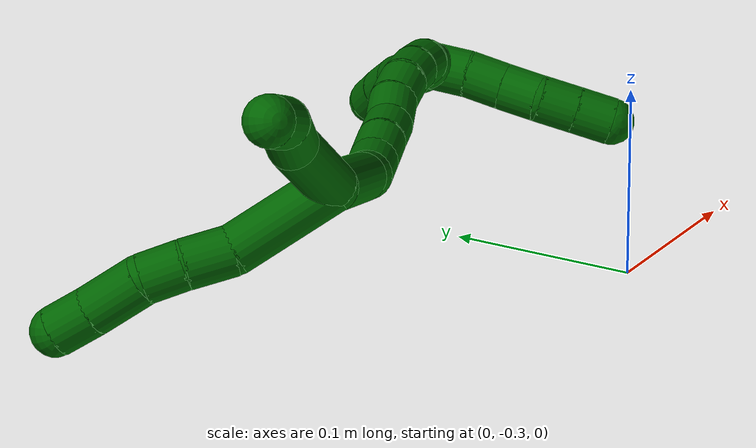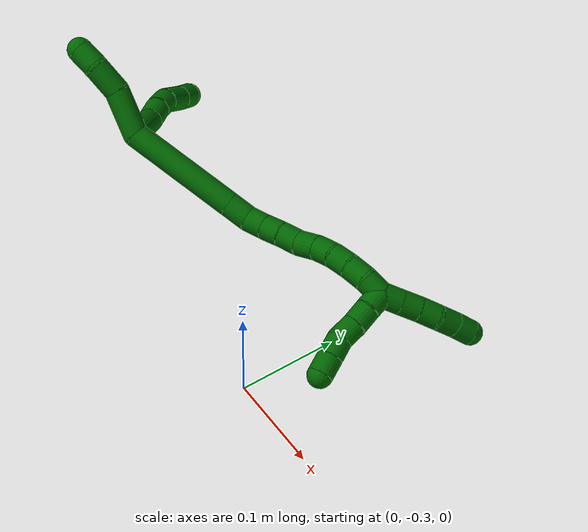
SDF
<sdf version="1.7">
 <world name="default">
  <model name="6">
   <static>0</static>
   <link name="6">
    <collision name="collision-cylinder-e_1_2_8">
     <pose>-0.023051 -0.011355 -0.009901 2.28793 -0.991919 -1.74363</pose>
     <geometry><cylinder><radius>0.0125</radius><length>0.055075</length></cylinder></geometry>
     <surface>
      <friction><ode><mu>1.16</mu><mu2>1.16</mu2><slip1>0</slip1><slip2>0</slip2></ode></friction>
      <contact><ode><kp>1e+06</kp><kd>1</kd><max_vel>0</max_vel><min_depth>0.001</min_depth></ode></contact>
     </surface>
    </collision>
    <visual name="visual-cylinder-e_1_2_8">
     <pose>-0.023051 -0.011355 -0.009901 2.28793 -0.991919 -1.74363</pose>
     <geometry><cylinder><radius>0.0125</radius><length>0.055075</length></cylinder></geometry>
     <material><ambient>0 0.392157 0.003922 1</ambient></material>
    </visual>
    <collision name="collision-cylinder-e_2_8_9">
     <pose>-0.057213 -0.024337 -0.023849 2.75915 -1.19672 -2.58823</pose>
     <geometry><cylinder><radius>0.0125</radius><length>0.023872</length></cylinder></geometry>
     <surface>
      <friction><ode><mu>1.16</mu><mu2>1.16</mu2><slip1>0</slip1><slip2>0</slip2></ode></friction>
      <contact><ode><kp>1e+06</kp><kd>1</kd><max_vel>0</max_vel><min_depth>0.001</min_depth></ode></contact>
     </surface>
    </collision>
    <visual name="visual-cylinder-e_2_8_9">
     <pose>-0.057213 -0.024337 -0.023849 2.75915 -1.19672 -2.58823</pose>
     <geometry><cylinder><radius>0.0125</radius><length>0.023872</length></cylinder></geometry>
     <material><ambient>0 0.392157 0.003922 1</ambient></material>
    </visual>
    <collision name="collision-cylinder-e_3_9_10">
     <pose>-0.077357 -0.027998 -0.032349 2.71324 -1.07417 -2.44116</pose>
     <geometry><cylinder><radius>0.0125</radius><length>0.020551</length></cylinder></geometry>
     <surface>
      <friction><ode><mu>1.16</mu><mu2>1.16</mu2><slip1>0</slip1><slip2>0</slip2></ode></friction>
      <contact><ode><kp>1e+06</kp><kd>1</kd><max_vel>0</max_vel><min_depth>0.001</min_depth></ode></contact>
     </surface>
    </collision>
    <visual name="visual-cylinder-e_3_9_10">
     <pose>-0.077357 -0.027998 -0.032349 2.71324 -1.07417 -2.44116</pose>
     <geometry><cylinder><radius>0.0125</radius><length>0.020551</length></cylinder></geometry>
     <material><ambient>0 0.392157 0.003922 1</ambient></material>
    </visual>
    <collision name="collision-cylinder-e_4_10_11">
     <pose>-0.096519 -0.035999 -0.045803 2.55611 -0.753378 -1.83942</pose>
     <geometry><cylinder><radius>0.0125</radius><length>0.02961</length></cylinder></geometry>
     <surface>
      <friction><ode><mu>1.16</mu><mu2>1.16</mu2><slip1>0</slip1><slip2>0</slip2></ode></friction>
      <contact><ode><kp>1e+06</kp><kd>1</kd><max_vel>0</max_vel><min_depth>0.001</min_depth></ode></contact>
     </surface>
    </collision>
    <visual name="visual-cylinder-e_4_10_11">
     <pose>-0.096519 -0.035999 -0.045803 2.55611 -0.753378 -1.83942</pose>
     <geometry><cylinder><radius>0.0125</radius><length>0.02961</length></cylinder></geometry>
     <material><ambient>0 0.392157 0.003922 1</ambient></material>
    </visual>
    <collision name="collision-cylinder-e_5_11_6">
     <pose>-0.114209 -0.045781 -0.060918 2.58396 -0.809356 -1.96323</pose>
     <geometry><cylinder><radius>0.0125</radius><length>0.020892</length></cylinder></geometry>
     <surface>
      <friction><ode><mu>1.16</mu><mu2>1.16</mu2><slip1>0</slip1><slip2>0</slip2></ode></friction>
      <contact><ode><kp>1e+06</kp><kd>1</kd><max_vel>0</max_vel><min_depth>0.001</min_depth></ode></contact>
     </surface>
    </collision>
    <visual name="visual-cylinder-e_5_11_6">
     <pose>-0.114209 -0.045781 -0.060918 2.58396 -0.809356 -1.96323</pose>
     <geometry><cylinder><radius>0.0125</radius><length>0.020892</length></cylinder></geometry>
     <material><ambient>0 0.392157 0.003922 1</ambient></material>
    </visual>
    <collision name="collision-cylinder-e_1_2_12">
     <pose>-0.014214 0.012158 0.013254 -0.74227 -0.668801 0.268803</pose>
     <geometry><cylinder><radius>0.0125</radius><length>0.045849</length></cylinder></geometry>
     <surface>
      <friction><ode><mu>1.16</mu><mu2>1.16</mu2><slip1>0</slip1><slip2>0</slip2></ode></friction>
      <contact><ode><kp>1e+06</kp><kd>1</kd><max_vel>0</max_vel><min_depth>0.001</min_depth></ode></contact>
     </surface>
    </collision>
    <visual name="visual-cylinder-e_1_2_12">
     <pose>-0.014214 0.012158 0.013254 -0.74227 -0.668801 0.268803</pose>
     <geometry><cylinder><radius>0.0125</radius><length>0.045849</length></cylinder></geometry>
     <material><ambient>0 0.392157 0.003922 1</ambient></material>
    </visual>
    <collision name="collision-cylinder-e_2_12_13">
     <pose>-0.035436 0.03057 0.039308 -0.454536 -0.457164 0.107502</pose>
     <geometry><cylinder><radius>0.0125</radius><length>0.031753</length></cylinder></geometry>
     <surface>
      <friction><ode><mu>1.16</mu><mu2>1.16</mu2><slip1>0</slip1><slip2>0</slip2></ode></friction>
      <contact><ode><kp>1e+06</kp><kd>1</kd><max_vel>0</max_vel><min_depth>0.001</min_depth></ode></contact>
     </surface>
    </collision>
    <visual name="visual-cylinder-e_2_12_13">
     <pose>-0.035436 0.03057 0.039308 -0.454536 -0.457164 0.107502</pose>
     <geometry><cylinder><radius>0.0125</radius><length>0.031753</length></cylinder></geometry>
     <material><ambient>0 0.392157 0.003922 1</ambient></material>
    </visual>
    <collision name="collision-cylinder-e_3_13_5">
     <pose>-0.049543 0.038324 0.060639 -0.173954 -0.686548 0.062313</pose>
     <geometry><cylinder><radius>0.0125</radius><length>0.022398</length></cylinder></geometry>
     <surface>
      <friction><ode><mu>1.16</mu><mu2>1.16</mu2><slip1>0</slip1><slip2>0</slip2></ode></friction>
      <contact><ode><kp>1e+06</kp><kd>1</kd><max_vel>0</max_vel><min_depth>0.001</min_depth></ode></contact>
     </surface>
    </collision>
    <visual name="visual-cylinder-e_3_13_5">
     <pose>-0.049543 0.038324 0.060639 -0.173954 -0.686548 0.062313</pose>
     <geometry><cylinder><radius>0.0125</radius><length>0.022398</length></cylinder></geometry>
     <material><ambient>0 0.392157 0.003922 1</ambient></material>
    </visual>
    <collision name="collision-cylinder-e_1_2_14">
     <pose>0.029814 -0.002997 -0.048864 3.08033 0.547007 2.924</pose>
     <geometry><cylinder><radius>0.0125</radius><length>0.114639</length></cylinder></geometry>
     <surface>
      <friction><ode><mu>1.16</mu><mu2>1.16</mu2><slip1>0</slip1><slip2>0</slip2></ode></friction>
      <contact><ode><kp>1e+06</kp><kd>1</kd><max_vel>0</max_vel><min_depth>0.001</min_depth></ode></contact>
     </surface>
    </collision>
    <visual name="visual-cylinder-e_1_2_14">
     <pose>0.029814 -0.002997 -0.048864 3.08033 0.547007 2.924</pose>
     <geometry><cylinder><radius>0.0125</radius><length>0.114639</length></cylinder></geometry>
     <material><ambient>0 0.392157 0.003922 1</ambient></material>
    </visual>
    <collision name="collision-cylinder-e_2_14_15">
     <pose>0.065845 -0.006506 -0.10766 3.09017 0.55871 2.96276</pose>
     <geometry><cylinder><radius>0.0125</radius><length>0.023459</length></cylinder></geometry>
     <surface>
      <friction><ode><mu>1.16</mu><mu2>1.16</mu2><slip1>0</slip1><slip2>0</slip2></ode></friction>
      <contact><ode><kp>1e+06</kp><kd>1</kd><max_vel>0</max_vel><min_depth>0.001</min_depth></ode></contact>
     </surface>
    </collision>
    <visual name="visual-cylinder-e_2_14_15">
     <pose>0.065845 -0.006506 -0.10766 3.09017 0.55871 2.96276</pose>
     <geometry><cylinder><radius>0.0125</radius><length>0.023459</length></cylinder></geometry>
     <material><ambient>0 0.392157 0.003922 1</ambient></material>
    </visual>
    <collision name="collision-cylinder-e_3_15_16">
     <pose>0.077853 -0.004225 -0.125365 -2.79661 0.611485 -2.13289</pose>
     <geometry><cylinder><radius>0.0125</radius><length>0.020172</length></cylinder></geometry>
     <surface>
      <friction><ode><mu>1.16</mu><mu2>1.16</mu2><slip1>0</slip1><slip2>0</slip2></ode></friction>
      <contact><ode><kp>1e+06</kp><kd>1</kd><max_vel>0</max_vel><min_depth>0.001</min_depth></ode></contact>
     </surface>
    </collision>
    <visual name="visual-cylinder-e_3_15_16">
     <pose>0.077853 -0.004225 -0.125365 -2.79661 0.611485 -2.13289</pose>
     <geometry><cylinder><radius>0.0125</radius><length>0.020172</length></cylinder></geometry>
     <material><ambient>0 0.392157 0.003922 1</ambient></material>
    </visual>
    <collision name="collision-cylinder-e_4_16_17">
     <pose>0.089783 0.002525 -0.14018 -2.62976 0.649891 -1.82087</pose>
     <geometry><cylinder><radius>0.0125</radius><length>0.020292</length></cylinder></geometry>
     <surface>
      <friction><ode><mu>1.16</mu><mu2>1.16</mu2><slip1>0</slip1><slip2>0</slip2></ode></friction>
      <contact><ode><kp>1e+06</kp><kd>1</kd><max_vel>0</max_vel><min_depth>0.001</min_depth></ode></contact>
     </surface>
    </collision>
    <visual name="visual-cylinder-e_4_16_17">
     <pose>0.089783 0.002525 -0.14018 -2.62976 0.649891 -1.82087</pose>
     <geometry><cylinder><radius>0.0125</radius><length>0.020292</length></cylinder></geometry>
     <material><ambient>0 0.392157 0.003922 1</ambient></material>
    </visual>
    <collision name="collision-cylinder-e_5_17_18">
     <pose>0.101934 0.009549 -0.154684 -2.75151 0.640364 -2.06699</pose>
     <geometry><cylinder><radius>0.0125</radius><length>0.020122</length></cylinder></geometry>
     <surface>
      <friction><ode><mu>1.16</mu><mu2>1.16</mu2><slip1>0</slip1><slip2>0</slip2></ode></friction>
      <contact><ode><kp>1e+06</kp><kd>1</kd><max_vel>0</max_vel><min_depth>0.001</min_depth></ode></contact>
     </surface>
    </collision>
    <visual name="visual-cylinder-e_5_17_18">
     <pose>0.101934 0.009549 -0.154684 -2.75151 0.640364 -2.06699</pose>
     <geometry><cylinder><radius>0.0125</radius><length>0.020122</length></cylinder></geometry>
     <material><ambient>0 0.392157 0.003922 1</ambient></material>
    </visual>
    <collision name="collision-cylinder-e_6_18_19">
     <pose>0.113515 0.017945 -0.169444 -2.51099 0.552372 -1.43077</pose>
     <geometry><cylinder><radius>0.0125</radius><length>0.021229</length></cylinder></geometry>
     <surface>
      <friction><ode><mu>1.16</mu><mu2>1.16</mu2><slip1>0</slip1><slip2>0</slip2></ode></friction>
      <contact><ode><kp>1e+06</kp><kd>1</kd><max_vel>0</max_vel><min_depth>0.001</min_depth></ode></contact>
     </surface>
    </collision>
    <visual name="visual-cylinder-e_6_18_19">
     <pose>0.113515 0.017945 -0.169444 -2.51099 0.552372 -1.43077</pose>
     <geometry><cylinder><radius>0.0125</radius><length>0.021229</length></cylinder></geometry>
     <material><ambient>0 0.392157 0.003922 1</ambient></material>
    </visual>
    <collision name="collision-cylinder-e_7_19_20">
     <pose>0.125659 0.02744 -0.183077 -2.55981 0.714328 -1.78933</pose>
     <geometry><cylinder><radius>0.0125</radius><length>0.020073</length></cylinder></geometry>
     <surface>
      <friction><ode><mu>1.16</mu><mu2>1.16</mu2><slip1>0</slip1><slip2>0</slip2></ode></friction>
      <contact><ode><kp>1e+06</kp><kd>1</kd><max_vel>0</max_vel><min_depth>0.001</min_depth></ode></contact>
     </surface>
    </collision>
    <visual name="visual-cylinder-e_7_19_20">
     <pose>0.125659 0.02744 -0.183077 -2.55981 0.714328 -1.78933</pose>
     <geometry><cylinder><radius>0.0125</radius><length>0.020073</length></cylinder></geometry>
     <material><ambient>0 0.392157 0.003922 1</ambient></material>
    </visual>
    <collision name="collision-cylinder-e_8_20_21">
     <pose>0.139011 0.033874 -0.196413 -2.82827 0.744249 -2.37249</pose>
     <geometry><cylinder><radius>0.0125</radius><length>0.020006</length></cylinder></geometry>
     <surface>
      <friction><ode><mu>1.16</mu><mu2>1.16</mu2><slip1>0</slip1><slip2>0</slip2></ode></friction>
      <contact><ode><kp>1e+06</kp><kd>1</kd><max_vel>0</max_vel><min_depth>0.001</min_depth></ode></contact>
     </surface>
    </collision>
    <visual name="visual-cylinder-e_8_20_21">
     <pose>0.139011 0.033874 -0.196413 -2.82827 0.744249 -2.37249</pose>
     <geometry><cylinder><radius>0.0125</radius><length>0.020006</length></cylinder></geometry>
     <material><ambient>0 0.392157 0.003922 1</ambient></material>
    </visual>
    <collision name="collision-cylinder-e_9_21_22">
     <pose>0.152482 0.03703 -0.210791 -3.02181 0.733282 -2.8318</pose>
     <geometry><cylinder><radius>0.0125</radius><length>0.020005</length></cylinder></geometry>
     <surface>
      <friction><ode><mu>1.16</mu><mu2>1.16</mu2><slip1>0</slip1><slip2>0</slip2></ode></friction>
      <contact><ode><kp>1e+06</kp><kd>1</kd><max_vel>0</max_vel><min_depth>0.001</min_depth></ode></contact>
     </surface>
    </collision>
    <visual name="visual-cylinder-e_9_21_22">
     <pose>0.152482 0.03703 -0.210791 -3.02181 0.733282 -2.8318</pose>
     <geometry><cylinder><radius>0.0125</radius><length>0.020005</length></cylinder></geometry>
     <material><ambient>0 0.392157 0.003922 1</ambient></material>
    </visual>
    <collision name="collision-cylinder-e_10_22_1">
     <pose>0.165054 0.036185 -0.226074 2.92567 0.628164 2.4975</pose>
     <geometry><cylinder><radius>0.0125</radius><length>0.020002</length></cylinder></geometry>
     <surface>
      <friction><ode><mu>1.16</mu><mu2>1.16</mu2><slip1>0</slip1><slip2>0</slip2></ode></friction>
      <contact><ode><kp>1e+06</kp><kd>1</kd><max_vel>0</max_vel><min_depth>0.001</min_depth></ode></contact>
     </surface>
    </collision>
    <visual name="visual-cylinder-e_10_22_1">
     <pose>0.165054 0.036185 -0.226074 2.92567 0.628164 2.4975</pose>
     <geometry><cylinder><radius>0.0125</radius><length>0.020002</length></cylinder></geometry>
     <material><ambient>0 0.392157 0.003922 1</ambient></material>
    </visual>
    <collision name="collision-cylinder-e_1_1_23">
     <pose>0.172 0.033238 -0.243846 3.01923 0.107151 1.43816</pose>
     <geometry><cylinder><radius>0.0125</radius><length>0.02</length></cylinder></geometry>
     <surface>
      <friction><ode><mu>1.16</mu><mu2>1.16</mu2><slip1>0</slip1><slip2>0</slip2></ode></friction>
      <contact><ode><kp>1e+06</kp><kd>1</kd><max_vel>0</max_vel><min_depth>0.001</min_depth></ode></contact>
     </surface>
    </collision>
    <visual name="visual-cylinder-e_1_1_23">
     <pose>0.172 0.033238 -0.243846 3.01923 0.107151 1.43816</pose>
     <geometry><cylinder><radius>0.0125</radius><length>0.02</length></cylinder></geometry>
     <material><ambient>0 0.392157 0.003922 1</ambient></material>
    </visual>
    <collision name="collision-cylinder-e_2_23_24">
     <pose>0.17405 0.030883 -0.2636 3.02674 0.098226 1.41473</pose>
     <geometry><cylinder><radius>0.0125</radius><length>0.02</length></cylinder></geometry>
     <surface>
      <friction><ode><mu>1.16</mu><mu2>1.16</mu2><slip1>0</slip1><slip2>0</slip2></ode></friction>
      <contact><ode><kp>1e+06</kp><kd>1</kd><max_vel>0</max_vel><min_depth>0.001</min_depth></ode></contact>
     </surface>
    </collision>
    <visual name="visual-cylinder-e_2_23_24">
     <pose>0.17405 0.030883 -0.2636 3.02674 0.098226 1.41473</pose>
     <geometry><cylinder><radius>0.0125</radius><length>0.02</length></cylinder></geometry>
     <material><ambient>0 0.392157 0.003922 1</ambient></material>
    </visual>
    <collision name="collision-cylinder-e_3_24_25">
     <pose>0.176639 0.028602 -0.28329 3.02575 0.161539 1.89832</pose>
     <geometry><cylinder><radius>0.0125</radius><length>0.02</length></cylinder></geometry>
     <surface>
      <friction><ode><mu>1.16</mu><mu2>1.16</mu2><slip1>0</slip1><slip2>0</slip2></ode></friction>
      <contact><ode><kp>1e+06</kp><kd>1</kd><max_vel>0</max_vel><min_depth>0.001</min_depth></ode></contact>
     </surface>
    </collision>
    <visual name="visual-cylinder-e_3_24_25">
     <pose>0.176639 0.028602 -0.28329 3.02575 0.161539 1.89832</pose>
     <geometry><cylinder><radius>0.0125</radius><length>0.02</length></cylinder></geometry>
     <material><ambient>0 0.392157 0.003922 1</ambient></material>
    </visual>
    <collision name="collision-cylinder-e_4_25_26">
     <pose>0.178003 0.024548 -0.302657 2.84589 -0.024466 -0.163905</pose>
     <geometry><cylinder><radius>0.0125</radius><length>0.02</length></cylinder></geometry>
     <surface>
      <friction><ode><mu>1.16</mu><mu2>1.16</mu2><slip1>0</slip1><slip2>0</slip2></ode></friction>
      <contact><ode><kp>1e+06</kp><kd>1</kd><max_vel>0</max_vel><min_depth>0.001</min_depth></ode></contact>
     </surface>
    </collision>
    <visual name="visual-cylinder-e_4_25_26">
     <pose>0.178003 0.024548 -0.302657 2.84589 -0.024466 -0.163905</pose>
     <geometry><cylinder><radius>0.0125</radius><length>0.02</length></cylinder></geometry>
     <material><ambient>0 0.392157 0.003922 1</ambient></material>
    </visual>
    <collision name="collision-cylinder-e_5_26_4">
     <pose>0.177852 0.018429 -0.321692 2.81519 0.009311 0.056532</pose>
     <geometry><cylinder><radius>0.0125</radius><length>0.02</length></cylinder></geometry>
     <surface>
      <friction><ode><mu>1.16</mu><mu2>1.16</mu2><slip1>0</slip1><slip2>0</slip2></ode></friction>
      <contact><ode><kp>1e+06</kp><kd>1</kd><max_vel>0</max_vel><min_depth>0.001</min_depth></ode></contact>
     </surface>
    </collision>
    <visual name="visual-cylinder-e_5_26_4">
     <pose>0.177852 0.018429 -0.321692 2.81519 0.009311 0.056532</pose>
     <geometry><cylinder><radius>0.0125</radius><length>0.02</length></cylinder></geometry>
     <material><ambient>0 0.392157 0.003922 1</ambient></material>
    </visual>
    <collision name="collision-cylinder-e_1_1_27">
     <pose>0.178521 0.030965 -0.228478 0.564922 0.861781 0.265262</pose>
     <geometry><cylinder><radius>0.0125</radius><length>0.02</length></cylinder></geometry>
     <surface>
      <friction><ode><mu>1.16</mu><mu2>1.16</mu2><slip1>0</slip1><slip2>0</slip2></ode></friction>
      <contact><ode><kp>1e+06</kp><kd>1</kd><max_vel>0</max_vel><min_depth>0.001</min_depth></ode></contact>
     </surface>
    </collision>
    <visual name="visual-cylinder-e_1_1_27">
     <pose>0.178521 0.030965 -0.228478 0.564922 0.861781 0.265262</pose>
     <geometry><cylinder><radius>0.0125</radius><length>0.02</length></cylinder></geometry>
     <material><ambient>0 0.392157 0.003922 1</ambient></material>
    </visual>
    <collision name="collision-cylinder-e_2_27_28">
     <pose>0.193384 0.022949 -0.217824 0.721059 0.814322 0.322356</pose>
     <geometry><cylinder><radius>0.0125</radius><length>0.02</length></cylinder></geometry>
     <surface>
      <friction><ode><mu>1.16</mu><mu2>1.16</mu2><slip1>0</slip1><slip2>0</slip2></ode></friction>
      <contact><ode><kp>1e+06</kp><kd>1</kd><max_vel>0</max_vel><min_depth>0.001</min_depth></ode></contact>
     </surface>
    </collision>
    <visual name="visual-cylinder-e_2_27_28">
     <pose>0.193384 0.022949 -0.217824 0.721059 0.814322 0.322356</pose>
     <geometry><cylinder><radius>0.0125</radius><length>0.02</length></cylinder></geometry>
     <material><ambient>0 0.392157 0.003922 1</ambient></material>
    </visual>
    <collision name="collision-cylinder-e_3_28_29">
     <pose>0.207448 0.014186 -0.206672 0.614536 0.746682 0.247326</pose>
     <geometry><cylinder><radius>0.0125</radius><length>0.02</length></cylinder></geometry>
     <surface>
      <friction><ode><mu>1.16</mu><mu2>1.16</mu2><slip1>0</slip1><slip2>0</slip2></ode></friction>
      <contact><ode><kp>1e+06</kp><kd>1</kd><max_vel>0</max_vel><min_depth>0.001</min_depth></ode></contact>
     </surface>
    </collision>
    <visual name="visual-cylinder-e_3_28_29">
     <pose>0.207448 0.014186 -0.206672 0.614536 0.746682 0.247326</pose>
     <geometry><cylinder><radius>0.0125</radius><length>0.02</length></cylinder></geometry>
     <material><ambient>0 0.392157 0.003922 1</ambient></material>
    </visual>
    <collision name="collision-cylinder-e_4_29_30">
     <pose>0.222519 0.005605 -0.197132 0.887164 0.975269 0.49373</pose>
     <geometry><cylinder><radius>0.0125</radius><length>0.02</length></cylinder></geometry>
     <surface>
      <friction><ode><mu>1.16</mu><mu2>1.16</mu2><slip1>0</slip1><slip2>0</slip2></ode></friction>
      <contact><ode><kp>1e+06</kp><kd>1</kd><max_vel>0</max_vel><min_depth>0.001</min_depth></ode></contact>
     </surface>
    </collision>
    <visual name="visual-cylinder-e_4_29_30">
     <pose>0.222519 0.005605 -0.197132 0.887164 0.975269 0.49373</pose>
     <geometry><cylinder><radius>0.0125</radius><length>0.02</length></cylinder></geometry>
     <material><ambient>0 0.392157 0.003922 1</ambient></material>
    </visual>
    <collision name="collision-cylinder-e_5_30_3">
     <pose>0.239037 -0.003128 -0.19 0.88467 0.968445 0.488315</pose>
     <geometry><cylinder><radius>0.0125</radius><length>0.02</length></cylinder></geometry>
     <surface>
      <friction><ode><mu>1.16</mu><mu2>1.16</mu2><slip1>0</slip1><slip2>0</slip2></ode></friction>
      <contact><ode><kp>1e+06</kp><kd>1</kd><max_vel>0</max_vel><min_depth>0.001</min_depth></ode></contact>
     </surface>
    </collision>
    <visual name="visual-cylinder-e_5_30_3">
     <pose>0.239037 -0.003128 -0.19 0.88467 0.968445 0.488315</pose>
     <geometry><cylinder><radius>0.0125</radius><length>0.02</length></cylinder></geometry>
     <material><ambient>0 0.392157 0.003922 1</ambient></material>
    </visual>
    <collision name="collision-sphere-3">
     <pose>0.247277 -0.007511 -0.18641 0 -0 0</pose>
     <geometry><sphere><radius>0.0125</radius></sphere></geometry>
     <surface>
      <friction><ode><mu>1.16</mu><mu2>1.16</mu2><slip1>0</slip1><slip2>0</slip2></ode></friction>
      <contact><ode><kp>1e+06</kp><kd>1</kd><max_vel>0</max_vel><min_depth>0.001</min_depth></ode></contact>
     </surface>
    </collision>
    <visual name="visual-sphere-3">
     <pose>0.247277 -0.007511 -0.18641 0 -0 0</pose>
     <geometry><sphere><radius>0.0125</radius></sphere></geometry>
     <material><ambient>0 0.392157 0.003922 1</ambient></material>
    </visual>
    <collision name="collision-sphere-30">
     <pose>0.230797 0.001256 -0.193589 0 -0 0</pose>
     <geometry><sphere><radius>0.0125</radius></sphere></geometry>
     <surface>
      <friction><ode><mu>1.16</mu><mu2>1.16</mu2><slip1>0</slip1><slip2>0</slip2></ode></friction>
      <contact><ode><kp>1e+06</kp><kd>1</kd><max_vel>0</max_vel><min_depth>0.001</min_depth></ode></contact>
     </surface>
    </collision>
    <visual name="visual-sphere-30">
     <pose>0.230797 0.001256 -0.193589 0 -0 0</pose>
     <geometry><sphere><radius>0.0125</radius></sphere></geometry>
     <material><ambient>0 0.392157 0.003922 1</ambient></material>
    </visual>
    <collision name="collision-sphere-29">
     <pose>0.21424 0.009954 -0.200675 0 -0 0</pose>
     <geometry><sphere><radius>0.0125</radius></sphere></geometry>
     <surface>
      <friction><ode><mu>1.16</mu><mu2>1.16</mu2><slip1>0</slip1><slip2>0</slip2></ode></friction>
      <contact><ode><kp>1e+06</kp><kd>1</kd><max_vel>0</max_vel><min_depth>0.001</min_depth></ode></contact>
     </surface>
    </collision>
    <visual name="visual-sphere-29">
     <pose>0.21424 0.009954 -0.200675 0 -0 0</pose>
     <geometry><sphere><radius>0.0125</radius></sphere></geometry>
     <material><ambient>0 0.392157 0.003922 1</ambient></material>
    </visual>
    <collision name="collision-sphere-28">
     <pose>0.200656 0.018417 -0.212668 0 -0 0</pose>
     <geometry><sphere><radius>0.0125</radius></sphere></geometry>
     <surface>
      <friction><ode><mu>1.16</mu><mu2>1.16</mu2><slip1>0</slip1><slip2>0</slip2></ode></friction>
      <contact><ode><kp>1e+06</kp><kd>1</kd><max_vel>0</max_vel><min_depth>0.001</min_depth></ode></contact>
     </surface>
    </collision>
    <visual name="visual-sphere-28">
     <pose>0.200656 0.018417 -0.212668 0 -0 0</pose>
     <geometry><sphere><radius>0.0125</radius></sphere></geometry>
     <material><ambient>0 0.392157 0.003922 1</ambient></material>
    </visual>
    <collision name="collision-sphere-27">
     <pose>0.186111 0.02748 -0.222979 0 -0 0</pose>
     <geometry><sphere><radius>0.0125</radius></sphere></geometry>
     <surface>
      <friction><ode><mu>1.16</mu><mu2>1.16</mu2><slip1>0</slip1><slip2>0</slip2></ode></friction>
      <contact><ode><kp>1e+06</kp><kd>1</kd><max_vel>0</max_vel><min_depth>0.001</min_depth></ode></contact>
     </surface>
    </collision>
    <visual name="visual-sphere-27">
     <pose>0.186111 0.02748 -0.222979 0 -0 0</pose>
     <geometry><sphere><radius>0.0125</radius></sphere></geometry>
     <material><ambient>0 0.392157 0.003922 1</ambient></material>
    </visual>
    <collision name="collision-sphere-4">
     <pose>0.177945 0.015222 -0.331163 0 -0 0</pose>
     <geometry><sphere><radius>0.0125</radius></sphere></geometry>
     <surface>
      <friction><ode><mu>1.16</mu><mu2>1.16</mu2><slip1>0</slip1><slip2>0</slip2></ode></friction>
      <contact><ode><kp>1e+06</kp><kd>1</kd><max_vel>0</max_vel><min_depth>0.001</min_depth></ode></contact>
     </surface>
    </collision>
    <visual name="visual-sphere-4">
     <pose>0.177945 0.015222 -0.331163 0 -0 0</pose>
     <geometry><sphere><radius>0.0125</radius></sphere></geometry>
     <material><ambient>0 0.392157 0.003922 1</ambient></material>
    </visual>
    <collision name="collision-sphere-26">
     <pose>0.177759 0.021635 -0.31222 0 -0 0</pose>
     <geometry><sphere><radius>0.0125</radius></sphere></geometry>
     <surface>
      <friction><ode><mu>1.16</mu><mu2>1.16</mu2><slip1>0</slip1><slip2>0</slip2></ode></friction>
      <contact><ode><kp>1e+06</kp><kd>1</kd><max_vel>0</max_vel><min_depth>0.001</min_depth></ode></contact>
     </surface>
    </collision>
    <visual name="visual-sphere-26">
     <pose>0.177759 0.021635 -0.31222 0 -0 0</pose>
     <geometry><sphere><radius>0.0125</radius></sphere></geometry>
     <material><ambient>0 0.392157 0.003922 1</ambient></material>
    </visual>
    <collision name="collision-sphere-25">
     <pose>0.178248 0.027461 -0.293094 0 -0 0</pose>
     <geometry><sphere><radius>0.0125</radius></sphere></geometry>
     <surface>
      <friction><ode><mu>1.16</mu><mu2>1.16</mu2><slip1>0</slip1><slip2>0</slip2></ode></friction>
      <contact><ode><kp>1e+06</kp><kd>1</kd><max_vel>0</max_vel><min_depth>0.001</min_depth></ode></contact>
     </surface>
    </collision>
    <visual name="visual-sphere-25">
     <pose>0.178248 0.027461 -0.293094 0 -0 0</pose>
     <geometry><sphere><radius>0.0125</radius></sphere></geometry>
     <material><ambient>0 0.392157 0.003922 1</ambient></material>
    </visual>
    <collision name="collision-sphere-24">
     <pose>0.175031 0.029743 -0.273487 0 -0 0</pose>
     <geometry><sphere><radius>0.0125</radius></sphere></geometry>
     <surface>
      <friction><ode><mu>1.16</mu><mu2>1.16</mu2><slip1>0</slip1><slip2>0</slip2></ode></friction>
      <contact><ode><kp>1e+06</kp><kd>1</kd><max_vel>0</max_vel><min_depth>0.001</min_depth></ode></contact>
     </surface>
    </collision>
    <visual name="visual-sphere-24">
     <pose>0.175031 0.029743 -0.273487 0 -0 0</pose>
     <geometry><sphere><radius>0.0125</radius></sphere></geometry>
     <material><ambient>0 0.392157 0.003922 1</ambient></material>
    </visual>
    <collision name="collision-sphere-23">
     <pose>0.17307 0.032024 -0.253714 0 -0 0</pose>
     <geometry><sphere><radius>0.0125</radius></sphere></geometry>
     <surface>
      <friction><ode><mu>1.16</mu><mu2>1.16</mu2><slip1>0</slip1><slip2>0</slip2></ode></friction>
      <contact><ode><kp>1e+06</kp><kd>1</kd><max_vel>0</max_vel><min_depth>0.001</min_depth></ode></contact>
     </surface>
    </collision>
    <visual name="visual-sphere-23">
     <pose>0.17307 0.032024 -0.253714 0 -0 0</pose>
     <geometry><sphere><radius>0.0125</radius></sphere></geometry>
     <material><ambient>0 0.392157 0.003922 1</ambient></material>
    </visual>
    <collision name="collision-sphere-1">
     <pose>0.170931 0.034451 -0.233978 0 -0 0</pose>
     <geometry><sphere><radius>0.0125</radius></sphere></geometry>
     <surface>
      <friction><ode><mu>1.16</mu><mu2>1.16</mu2><slip1>0</slip1><slip2>0</slip2></ode></friction>
      <contact><ode><kp>1e+06</kp><kd>1</kd><max_vel>0</max_vel><min_depth>0.001</min_depth></ode></contact>
     </surface>
    </collision>
    <visual name="visual-sphere-1">
     <pose>0.170931 0.034451 -0.233978 0 -0 0</pose>
     <geometry><sphere><radius>0.0125</radius></sphere></geometry>
     <material><ambient>0 0.392157 0.003922 1</ambient></material>
    </visual>
    <collision name="collision-sphere-22">
     <pose>0.159176 0.037918 -0.218169 0 -0 0</pose>
     <geometry><sphere><radius>0.0125</radius></sphere></geometry>
     <surface>
      <friction><ode><mu>1.16</mu><mu2>1.16</mu2><slip1>0</slip1><slip2>0</slip2></ode></friction>
      <contact><ode><kp>1e+06</kp><kd>1</kd><max_vel>0</max_vel><min_depth>0.001</min_depth></ode></contact>
     </surface>
    </collision>
    <visual name="visual-sphere-22">
     <pose>0.159176 0.037918 -0.218169 0 -0 0</pose>
     <geometry><sphere><radius>0.0125</radius></sphere></geometry>
     <material><ambient>0 0.392157 0.003922 1</ambient></material>
    </visual>
    <collision name="collision-sphere-21">
     <pose>0.145787 0.036142 -0.203413 0 -0 0</pose>
     <geometry><sphere><radius>0.0125</radius></sphere></geometry>
     <surface>
      <friction><ode><mu>1.16</mu><mu2>1.16</mu2><slip1>0</slip1><slip2>0</slip2></ode></friction>
      <contact><ode><kp>1e+06</kp><kd>1</kd><max_vel>0</max_vel><min_depth>0.001</min_depth></ode></contact>
     </surface>
    </collision>
    <visual name="visual-sphere-21">
     <pose>0.145787 0.036142 -0.203413 0 -0 0</pose>
     <geometry><sphere><radius>0.0125</radius></sphere></geometry>
     <material><ambient>0 0.392157 0.003922 1</ambient></material>
    </visual>
    <collision name="collision-sphere-6">
     <pose>-0.12177 -0.049595 -0.067034 0 -0 0</pose>
     <geometry><sphere><radius>0.0125</radius></sphere></geometry>
     <surface>
      <friction><ode><mu>1.16</mu><mu2>1.16</mu2><slip1>0</slip1><slip2>0</slip2></ode></friction>
      <contact><ode><kp>1e+06</kp><kd>1</kd><max_vel>0</max_vel><min_depth>0.001</min_depth></ode></contact>
     </surface>
    </collision>
    <visual name="visual-sphere-6">
     <pose>-0.12177 -0.049595 -0.067034 0 -0 0</pose>
     <geometry><sphere><radius>0.0125</radius></sphere></geometry>
     <material><ambient>0 0.392157 0.003922 1</ambient></material>
    </visual>
    <collision name="collision-sphere-11">
     <pose>-0.106648 -0.041967 -0.054803 0 -0 0</pose>
     <geometry><sphere><radius>0.0125</radius></sphere></geometry>
     <surface>
      <friction><ode><mu>1.16</mu><mu2>1.16</mu2><slip1>0</slip1><slip2>0</slip2></ode></friction>
      <contact><ode><kp>1e+06</kp><kd>1</kd><max_vel>0</max_vel><min_depth>0.001</min_depth></ode></contact>
     </surface>
    </collision>
    <visual name="visual-sphere-11">
     <pose>-0.106648 -0.041967 -0.054803 0 -0 0</pose>
     <geometry><sphere><radius>0.0125</radius></sphere></geometry>
     <material><ambient>0 0.392157 0.003922 1</ambient></material>
    </visual>
    <collision name="collision-sphere-10">
     <pose>-0.086391 -0.030032 -0.036802 0 -0 0</pose>
     <geometry><sphere><radius>0.0125</radius></sphere></geometry>
     <surface>
      <friction><ode><mu>1.16</mu><mu2>1.16</mu2><slip1>0</slip1><slip2>0</slip2></ode></friction>
      <contact><ode><kp>1e+06</kp><kd>1</kd><max_vel>0</max_vel><min_depth>0.001</min_depth></ode></contact>
     </surface>
    </collision>
    <visual name="visual-sphere-10">
     <pose>-0.086391 -0.030032 -0.036802 0 -0 0</pose>
     <geometry><sphere><radius>0.0125</radius></sphere></geometry>
     <material><ambient>0 0.392157 0.003922 1</ambient></material>
    </visual>
    <collision name="collision-sphere-9">
     <pose>-0.068323 -0.025965 -0.027895 0 -0 0</pose>
     <geometry><sphere><radius>0.0125</radius></sphere></geometry>
     <surface>
      <friction><ode><mu>1.16</mu><mu2>1.16</mu2><slip1>0</slip1><slip2>0</slip2></ode></friction>
      <contact><ode><kp>1e+06</kp><kd>1</kd><max_vel>0</max_vel><min_depth>0.001</min_depth></ode></contact>
     </surface>
    </collision>
    <visual name="visual-sphere-9">
     <pose>-0.068323 -0.025965 -0.027895 0 -0 0</pose>
     <geometry><sphere><radius>0.0125</radius></sphere></geometry>
     <material><ambient>0 0.392157 0.003922 1</ambient></material>
    </visual>
    <collision name="collision-sphere-2">
     <geometry><sphere><radius>0.0125</radius></sphere></geometry>
     <surface>
      <friction><ode><mu>1.16</mu><mu2>1.16</mu2><slip1>0</slip1><slip2>0</slip2></ode></friction>
      <contact><ode><kp>1e+06</kp><kd>1</kd><max_vel>0</max_vel><min_depth>0.001</min_depth></ode></contact>
     </surface>
    </collision>
    <visual name="visual-sphere-2">
     <geometry><sphere><radius>0.0125</radius></sphere></geometry>
     <material><ambient>0 0.392157 0.003922 1</ambient></material>
    </visual>
    <collision name="collision-sphere-19">
     <pose>0.119084 0.023272 -0.176742 0 -0 0</pose>
     <geometry><sphere><radius>0.0125</radius></sphere></geometry>
     <surface>
      <friction><ode><mu>1.16</mu><mu2>1.16</mu2><slip1>0</slip1><slip2>0</slip2></ode></friction>
      <contact><ode><kp>1e+06</kp><kd>1</kd><max_vel>0</max_vel><min_depth>0.001</min_depth></ode></contact>
     </surface>
    </collision>
    <visual name="visual-sphere-19">
     <pose>0.119084 0.023272 -0.176742 0 -0 0</pose>
     <geometry><sphere><radius>0.0125</radius></sphere></geometry>
     <material><ambient>0 0.392157 0.003922 1</ambient></material>
    </visual>
    <collision name="collision-sphere-8">
     <pose>-0.046102 -0.022709 -0.019803 0 -0 0</pose>
     <geometry><sphere><radius>0.0125</radius></sphere></geometry>
     <surface>
      <friction><ode><mu>1.16</mu><mu2>1.16</mu2><slip1>0</slip1><slip2>0</slip2></ode></friction>
      <contact><ode><kp>1e+06</kp><kd>1</kd><max_vel>0</max_vel><min_depth>0.001</min_depth></ode></contact>
     </surface>
    </collision>
    <visual name="visual-sphere-8">
     <pose>-0.046102 -0.022709 -0.019803 0 -0 0</pose>
     <geometry><sphere><radius>0.0125</radius></sphere></geometry>
     <material><ambient>0 0.392157 0.003922 1</ambient></material>
    </visual>
    <collision name="collision-sphere-12">
     <pose>-0.028428 0.024315 0.026509 0 -0 0</pose>
     <geometry><sphere><radius>0.0125</radius></sphere></geometry>
     <surface>
      <friction><ode><mu>1.16</mu><mu2>1.16</mu2><slip1>0</slip1><slip2>0</slip2></ode></friction>
      <contact><ode><kp>1e+06</kp><kd>1</kd><max_vel>0</max_vel><min_depth>0.001</min_depth></ode></contact>
     </surface>
    </collision>
    <visual name="visual-sphere-12">
     <pose>-0.028428 0.024315 0.026509 0 -0 0</pose>
     <geometry><sphere><radius>0.0125</radius></sphere></geometry>
     <material><ambient>0 0.392157 0.003922 1</ambient></material>
    </visual>
    <collision name="collision-sphere-13">
     <pose>-0.042444 0.036825 0.052108 0 -0 0</pose>
     <geometry><sphere><radius>0.0125</radius></sphere></geometry>
     <surface>
      <friction><ode><mu>1.16</mu><mu2>1.16</mu2><slip1>0</slip1><slip2>0</slip2></ode></friction>
      <contact><ode><kp>1e+06</kp><kd>1</kd><max_vel>0</max_vel><min_depth>0.001</min_depth></ode></contact>
     </surface>
    </collision>
    <visual name="visual-sphere-13">
     <pose>-0.042444 0.036825 0.052108 0 -0 0</pose>
     <geometry><sphere><radius>0.0125</radius></sphere></geometry>
     <material><ambient>0 0.392157 0.003922 1</ambient></material>
    </visual>
    <collision name="collision-sphere-5">
     <pose>-0.056642 0.039823 0.06917 0 -0 0</pose>
     <geometry><sphere><radius>0.0125</radius></sphere></geometry>
     <surface>
      <friction><ode><mu>1.16</mu><mu2>1.16</mu2><slip1>0</slip1><slip2>0</slip2></ode></friction>
      <contact><ode><kp>1e+06</kp><kd>1</kd><max_vel>0</max_vel><min_depth>0.001</min_depth></ode></contact>
     </surface>
    </collision>
    <visual name="visual-sphere-5">
     <pose>-0.056642 0.039823 0.06917 0 -0 0</pose>
     <geometry><sphere><radius>0.0125</radius></sphere></geometry>
     <material><ambient>0 0.392157 0.003922 1</ambient></material>
    </visual>
    <collision name="collision-sphere-14">
     <pose>0.059627 -0.005995 -0.097727 0 -0 0</pose>
     <geometry><sphere><radius>0.0125</radius></sphere></geometry>
     <surface>
      <friction><ode><mu>1.16</mu><mu2>1.16</mu2><slip1>0</slip1><slip2>0</slip2></ode></friction>
      <contact><ode><kp>1e+06</kp><kd>1</kd><max_vel>0</max_vel><min_depth>0.001</min_depth></ode></contact>
     </surface>
    </collision>
    <visual name="visual-sphere-14">
     <pose>0.059627 -0.005995 -0.097727 0 -0 0</pose>
     <geometry><sphere><radius>0.0125</radius></sphere></geometry>
     <material><ambient>0 0.392157 0.003922 1</ambient></material>
    </visual>
    <collision name="collision-sphere-15">
     <pose>0.072063 -0.007017 -0.117593 0 -0 0</pose>
     <geometry><sphere><radius>0.0125</radius></sphere></geometry>
     <surface>
      <friction><ode><mu>1.16</mu><mu2>1.16</mu2><slip1>0</slip1><slip2>0</slip2></ode></friction>
      <contact><ode><kp>1e+06</kp><kd>1</kd><max_vel>0</max_vel><min_depth>0.001</min_depth></ode></contact>
     </surface>
    </collision>
    <visual name="visual-sphere-15">
     <pose>0.072063 -0.007017 -0.117593 0 -0 0</pose>
     <geometry><sphere><radius>0.0125</radius></sphere></geometry>
     <material><ambient>0 0.392157 0.003922 1</ambient></material>
    </visual>
    <collision name="collision-sphere-16">
     <pose>0.083643 -0.001432 -0.133137 0 -0 0</pose>
     <geometry><sphere><radius>0.0125</radius></sphere></geometry>
     <surface>
      <friction><ode><mu>1.16</mu><mu2>1.16</mu2><slip1>0</slip1><slip2>0</slip2></ode></friction>
      <contact><ode><kp>1e+06</kp><kd>1</kd><max_vel>0</max_vel><min_depth>0.001</min_depth></ode></contact>
     </surface>
    </collision>
    <visual name="visual-sphere-16">
     <pose>0.083643 -0.001432 -0.133137 0 -0 0</pose>
     <geometry><sphere><radius>0.0125</radius></sphere></geometry>
     <material><ambient>0 0.392157 0.003922 1</ambient></material>
    </visual>
    <collision name="collision-sphere-17">
     <pose>0.095922 0.006481 -0.147222 0 -0 0</pose>
     <geometry><sphere><radius>0.0125</radius></sphere></geometry>
     <surface>
      <friction><ode><mu>1.16</mu><mu2>1.16</mu2><slip1>0</slip1><slip2>0</slip2></ode></friction>
      <contact><ode><kp>1e+06</kp><kd>1</kd><max_vel>0</max_vel><min_depth>0.001</min_depth></ode></contact>
     </surface>
    </collision>
    <visual name="visual-sphere-17">
     <pose>0.095922 0.006481 -0.147222 0 -0 0</pose>
     <geometry><sphere><radius>0.0125</radius></sphere></geometry>
     <material><ambient>0 0.392157 0.003922 1</ambient></material>
    </visual>
    <collision name="collision-sphere-18">
     <pose>0.107945 0.012617 -0.162146 0 -0 0</pose>
     <geometry><sphere><radius>0.0125</radius></sphere></geometry>
     <surface>
      <friction><ode><mu>1.16</mu><mu2>1.16</mu2><slip1>0</slip1><slip2>0</slip2></ode></friction>
      <contact><ode><kp>1e+06</kp><kd>1</kd><max_vel>0</max_vel><min_depth>0.001</min_depth></ode></contact>
     </surface>
    </collision>
    <visual name="visual-sphere-18">
     <pose>0.107945 0.012617 -0.162146 0 -0 0</pose>
     <geometry><sphere><radius>0.0125</radius></sphere></geometry>
     <material><ambient>0 0.392157 0.003922 1</ambient></material>
    </visual>
    <collision name="collision-sphere-20">
     <pose>0.132234 0.031607 -0.189413 0 -0 0</pose>
     <geometry><sphere><radius>0.0125</radius></sphere></geometry>
     <surface>
      <friction><ode><mu>1.16</mu><mu2>1.16</mu2><slip1>0</slip1><slip2>0</slip2></ode></friction>
      <contact><ode><kp>1e+06</kp><kd>1</kd><max_vel>0</max_vel><min_depth>0.001</min_depth></ode></contact>
     </surface>
    </collision>
    <visual name="visual-sphere-20">
     <pose>0.132234 0.031607 -0.189413 0 -0 0</pose>
     <geometry><sphere><radius>0.0125</radius></sphere></geometry>
     <material><ambient>0 0.392157 0.003922 1</ambient></material>
    </visual>
    <inertial>
     <pose>0.067339 0.007258 -0.115802 0 -0 0</pose>
     <mass>0.75</mass>
     <inertia>
      <ixx>-7.9e-05</ixx>
      <ixy>0</ixy>
      <ixz>0</ixz>
      <iyy>0.000183</iyy>
      <iyz>0</iyz>
      <izz>-6.4e-05</izz>
     </inertia>
    </inertial>
   </link>
   <pose>-0.240012 -0.266984 0.121223 1.24955 -0.000447 -0.580498</pose>
  </model>
 </world>
</sdf>
